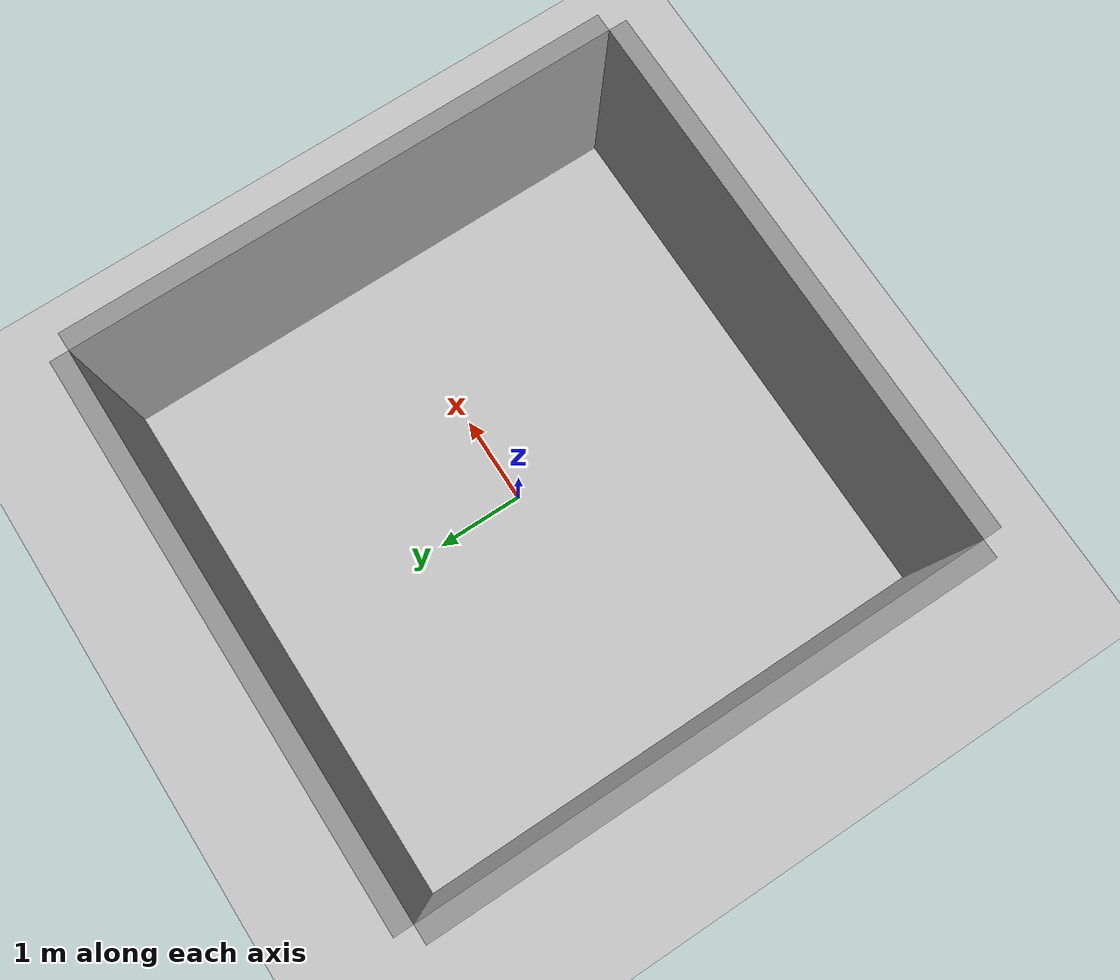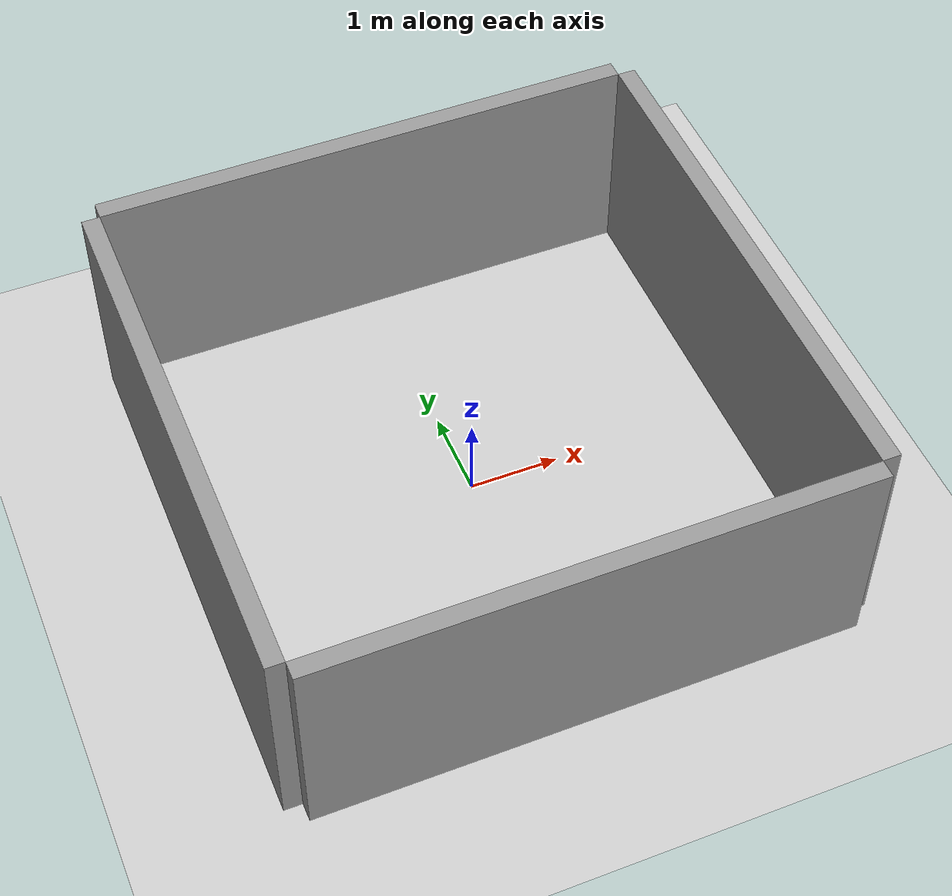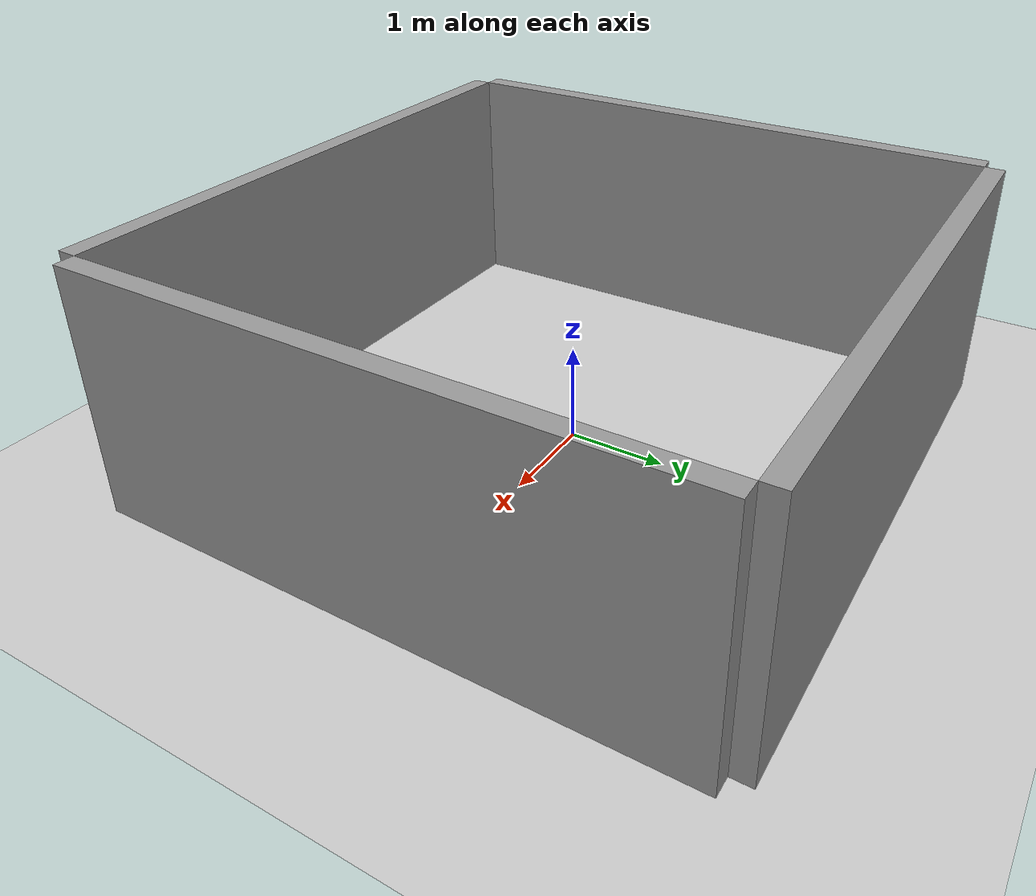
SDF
<sdf version='1.6'>
  <world name='default'>
    <include>
      <uri>model://ground_plane</uri>
    </include>

    <include>
      <uri>model://sun</uri>
    </include>

    <model name='white-wall'>
      <pose frame=''>0 0 0 0 -0 0</pose>

      <link name='Wall_0'>
        <collision name='Wall_0_Collision'>
          <geometry>
            <box>
              <size>6 0.2 2.5</size>
            </box>
          </geometry>
          <pose frame=''>0 0 1.25 0 -0 0</pose>
          <max_contacts>10</max_contacts>
        </collision>
        <visual name='Wall_0_Visual'>
          <pose frame=''>0 0 1.25 0 -0 0</pose>
          <geometry>
            <box>
              <size>6 0.2 2.5</size>
            </box>
          </geometry>
          <material>
            <script>
              <uri>file://media/materials/scripts/gazebo.material</uri>
              <name>Gazebo/Grey</name>
            </script>
            <ambient>1 1 1 1</ambient>
          </material>
        </visual>
        <pose frame=''>-0 3.1 0 0 -0 0</pose>
      </link>

      <link name='Wall_1'>
        <collision name='Wall_1_Collision'>
          <geometry>
            <box>
              <size>0.2 6 2.5</size>
            </box>
          </geometry>
          <pose frame=''>0 0 1.25 0 -0 0</pose>
          <max_contacts>10</max_contacts>
        </collision>
        <visual name='Wall_1_Visual'>
          <pose frame=''>0 0 1.25 0 -0 0</pose>
          <geometry>
            <box>
              <size>0.2 6 2.5</size>
            </box>
          </geometry>
          <material>
            <script>
              <uri>file://media/materials/scripts/gazebo.material</uri>
              <name>Gazebo/Grey</name>
            </script>
            <ambient>1 1 1 1</ambient>
          </material>
        </visual>
        <pose frame=''>-3.1 0 0 0 -0 0</pose>
      </link>

      <link name='Wall_2'>
        <collision name='Wall_2_Collision'>
          <geometry>
            <box>
              <size>6 0.2 2.5</size>
            </box>
          </geometry>
          <pose frame=''>0 0 1.25 0 -0 0</pose>
          <max_contacts>10</max_contacts>
        </collision>
        <visual name='Wall_2_Visual'>
          <pose frame=''>0 0 1.25 0 -0 0</pose>
          <geometry>
            <box>
              <size>6 0.2 2.5</size>
            </box>
          </geometry>
          <material>
            <script>
              <uri>file://media/materials/scripts/gazebo.material</uri>
              <name>Gazebo/Grey</name>
            </script>
            <ambient>1 1 1 1</ambient>
          </material>
        </visual>
        <pose frame=''>-0 -3.1 0 0 -0 0</pose>
      </link>

      <link name='Wall_3'>
        <collision name='Wall_3_Collision'>
          <geometry>
            <box>
              <size>0.2 6 2.5</size>
            </box>
          </geometry>
          <pose frame=''>0 0 1.25 0 -0 0</pose>
          <max_contacts>10</max_contacts>
        </collision>
        <visual name='Wall_3_Visual'>
          <pose frame=''>0 0 1.25 0 -0 0</pose>
          <geometry>
            <box>
              <size>0.2 6 2.5</size>
            </box>
          </geometry>
          <material>
            <script>
              <uri>file://media/materials/scripts/gazebo.material</uri>
              <name>Gazebo/Grey</name>
            </script>
            <ambient>1 1 1 1</ambient>
          </material>
        </visual>
        <pose frame=''>3.1 0 0 0 -0 0</pose>
      </link>
      <static>1</static>
    </model>
  </world>
</sdf>
